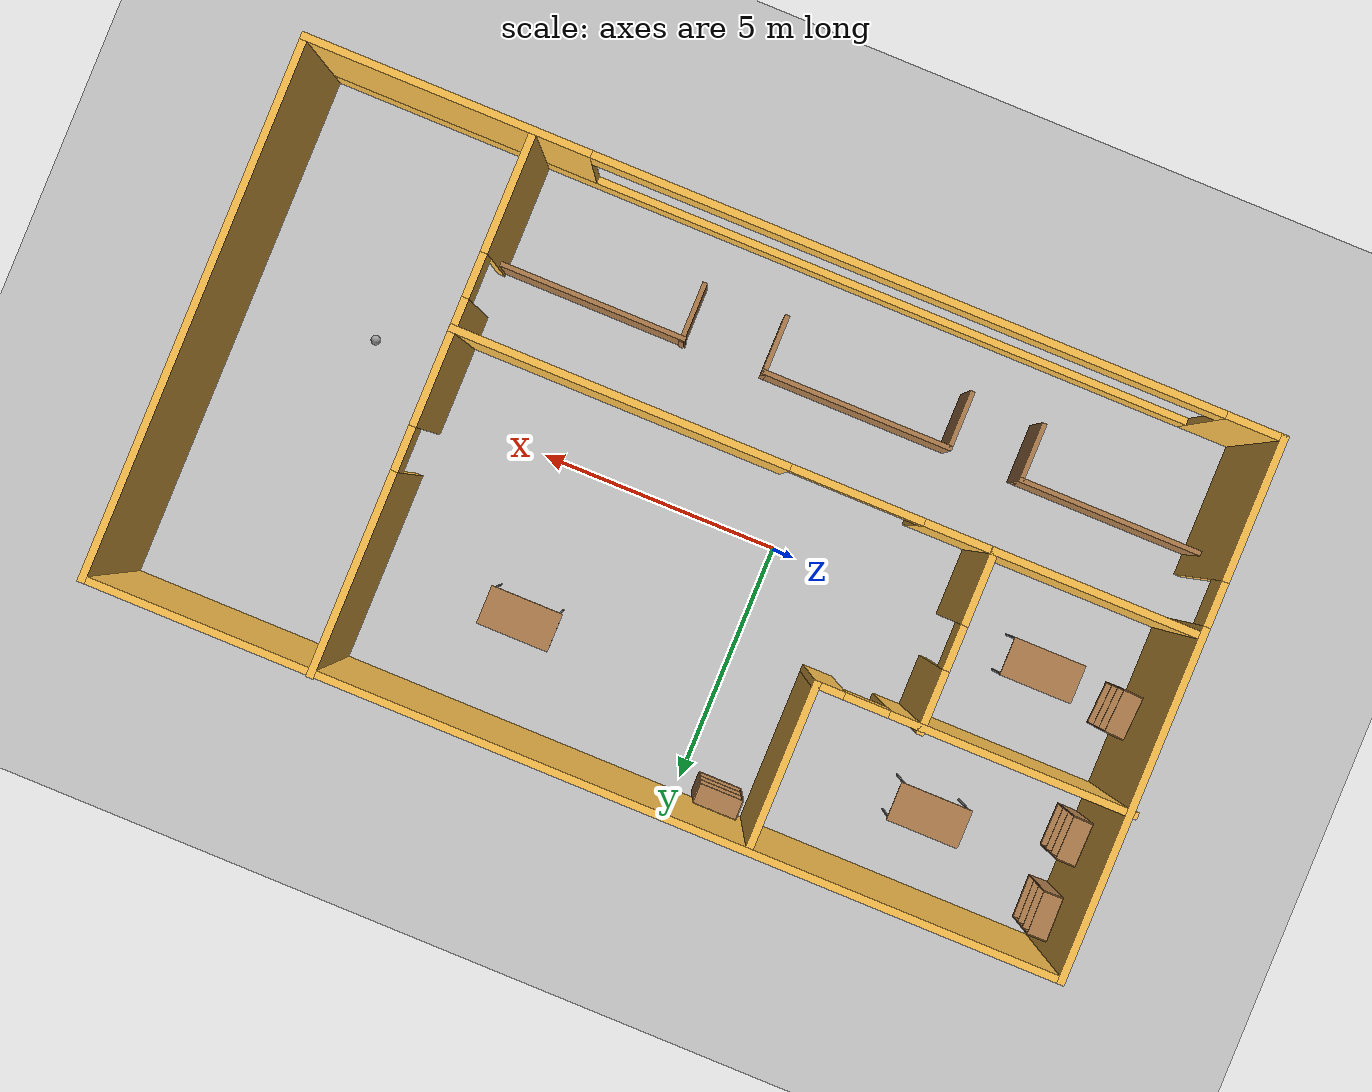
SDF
<sdf version="1.7">
 <world name="default">
  <light name="sun" type="directional">
   <pose>0 0 10 0 -0 0</pose>
   <diffuse>0.8 0.8 0.8 1</diffuse>
   <specular>0.2 0.2 0.2 1</specular>
   <attenuation>
    <range>1000</range>
    <constant>0.9</constant>
    <linear>0.01</linear>
    <quadratic>0.001</quadratic>
   </attenuation>
   <direction>-0.5 0.1 -0.9</direction>
   <spot><inner_angle>0</inner_angle><outer_angle>0</outer_angle><falloff>0</falloff></spot>
  </light>
  <model name="ground_plane">
   <static>1</static>
   <link name="link">
    <collision name="collision">
     <geometry><plane><normal>0 0 1</normal><size>100 100</size></plane></geometry>
     <surface>
      <contact><collide_bitmask>65535</collide_bitmask></contact>
      <friction><ode><mu>100</mu><mu2>50</mu2></ode></friction>
     </surface>
    </collision>
    <visual name="visual">
     <cast_shadows>0</cast_shadows>
     <geometry><plane><normal>0 0 1</normal><size>100 100</size></plane></geometry>
     <material>
      <script><uri>file://media/materials/scripts/gazebo.material</uri><name>Gazebo/Grey</name></script>
     </material>
    </visual>
   </link>
  </model>
  <gravity>0 0 -9.8</gravity>
  <magnetic_field>6e-06 2.3e-05 -4.2e-05</magnetic_field>
  <atmosphere type="adiabatic"/>
  <physics type="ode">
   <max_step_size>0.001</max_step_size>
   <real_time_factor>1</real_time_factor>
   <real_time_update_rate>1000</real_time_update_rate>
  </physics>
  <scene><ambient>0.4 0.4 0.4 1</ambient><background>0.7 0.7 0.7 1</background><shadows>1</shadows></scene>
  <spherical_coordinates>
   <surface_model>EARTH_WGS84</surface_model>
   <latitude_deg>0</latitude_deg>
   <longitude_deg>0</longitude_deg>
   <elevation>0</elevation>
   <heading_deg>0</heading_deg>
  </spherical_coordinates>
  <model name="office">
   <pose>1.96816 -0.051648 0 0 -0 0</pose>
   <link name="Wall_0">
    <pose>-9.76382 -0.012333 0 0 -0 -1.5708</pose>
    <visual name="Wall_0_Visual_0">
     <pose>-1.92357 0 1.25 0 -0 0</pose>
     <geometry><box><size>7.15286 0.15 2.5</size></box></geometry>
     <material>
      <script><uri>file://media/materials/scripts/gazebo.material</uri><name>Gazebo/Grey</name></script>
      <ambient>1 0.764706 0.305882 1</ambient>
     </material>
     <meta><layer>0</layer></meta>
    </visual>
    <collision name="Wall_0_Collision_0">
     <geometry><box><size>7.15286 0.15 2.5</size></box></geometry>
     <pose>-1.92357 0 1.25 0 -0 0</pose>
    </collision>
    <visual name="Wall_0_Visual_1">
     <pose>4.02643 0 1.25 0 -0 0</pose>
     <geometry><box><size>2.94714 0.15 2.5</size></box></geometry>
     <material>
      <script><uri>file://media/materials/scripts/gazebo.material</uri><name>Gazebo/Grey</name></script>
      <ambient>1 0.764706 0.305882 1</ambient>
     </material>
     <meta><layer>0</layer></meta>
    </visual>
    <collision name="Wall_0_Collision_1">
     <geometry><box><size>2.94714 0.15 2.5</size></box></geometry>
     <pose>4.02643 0 1.25 0 -0 0</pose>
    </collision>
    <visual name="Wall_0_Visual_2">
     <pose>2.10286 0 2.25 0 -0 0</pose>
     <geometry><box><size>0.9 0.15 0.5</size></box></geometry>
     <material>
      <script><uri>file://media/materials/scripts/gazebo.material</uri><name>Gazebo/Grey</name></script>
      <ambient>1 0.764706 0.305882 1</ambient>
     </material>
     <meta><layer>0</layer></meta>
    </visual>
    <collision name="Wall_0_Collision_2">
     <geometry><box><size>0.9 0.15 0.5</size></box></geometry>
     <pose>2.10286 0 2.25 0 -0 0</pose>
    </collision>
   </link>
   <link name="Wall_1">
    <pose>0.036176 -5.43733 0 0 -0 0</pose>
    <visual name="Wall_1_Visual_0">
     <pose>-9.26139 0 1.25 0 -0 0</pose>
     <geometry><box><size>1.22722 0.15 2.5</size></box></geometry>
     <material>
      <script><uri>file://media/materials/scripts/gazebo.material</uri><name>Gazebo/Grey</name></script>
      <ambient>1 0.764706 0.305882 1</ambient>
     </material>
     <meta><layer>0</layer></meta>
    </visual>
    <collision name="Wall_1_Collision_0">
     <geometry><box><size>1.22722 0.15 2.5</size></box></geometry>
     <pose>-9.26139 0 1.25 0 -0 0</pose>
    </collision>
    <visual name="Wall_1_Visual_1">
     <pose>0.613611 0 0.25 0 -0 0</pose>
     <geometry><box><size>18.5228 0.15 0.5</size></box></geometry>
     <material>
      <script><uri>file://media/materials/scripts/gazebo.material</uri><name>Gazebo/Grey</name></script>
      <ambient>1 0.764706 0.305882 1</ambient>
     </material>
     <meta><layer>0</layer></meta>
    </visual>
    <collision name="Wall_1_Collision_1">
     <geometry><box><size>18.5228 0.15 0.5</size></box></geometry>
     <pose>0.613611 0 0.25 0 -0 0</pose>
    </collision>
    <visual name="Wall_1_Visual_2">
     <pose>6.96961 0 1.5 0 -0 0</pose>
     <geometry><box><size>5.81078 0.15 2</size></box></geometry>
     <material>
      <script><uri>file://media/materials/scripts/gazebo.material</uri><name>Gazebo/Grey</name></script>
      <ambient>1 0.764706 0.305882 1</ambient>
     </material>
     <meta><layer>0</layer></meta>
    </visual>
    <collision name="Wall_1_Collision_2">
     <geometry><box><size>5.81078 0.15 2</size></box></geometry>
     <pose>6.96961 0 1.5 0 -0 0</pose>
    </collision>
    <visual name="Wall_1_Visual_3">
     <pose>-2.29178 0 2.25 0 -0 0</pose>
     <geometry><box><size>12.712 0.15 0.5</size></box></geometry>
     <material>
      <script><uri>file://media/materials/scripts/gazebo.material</uri><name>Gazebo/Grey</name></script>
      <ambient>1 0.764706 0.305882 1</ambient>
     </material>
     <meta><layer>0</layer></meta>
    </visual>
    <collision name="Wall_1_Collision_3">
     <geometry><box><size>12.712 0.15 0.5</size></box></geometry>
     <pose>-2.29178 0 2.25 0 -0 0</pose>
    </collision>
   </link>
   <link name="Wall_10">
    <pose>-5.60131 0.324548 0 0 -0 -1.5708</pose>
    <visual name="Wall_10_Visual_0">
     <pose>-1.23362 0 1.25 0 -0 0</pose>
     <geometry><box><size>1.28275 0.15 2.5</size></box></geometry>
     <material>
      <script><uri>file://media/materials/scripts/gazebo.material</uri><name>Gazebo/Grey</name></script>
      <ambient>1 0.764706 0.305882 1</ambient>
     </material>
     <meta><layer>0</layer></meta>
    </visual>
    <collision name="Wall_10_Collision_0">
     <geometry><box><size>1.28275 0.15 2.5</size></box></geometry>
     <pose>-1.23362 0 1.25 0 -0 0</pose>
    </collision>
    <visual name="Wall_10_Visual_1">
     <pose>1.09138 0 1.25 0 -0 0</pose>
     <geometry><box><size>1.56725 0.15 2.5</size></box></geometry>
     <material>
      <script><uri>file://media/materials/scripts/gazebo.material</uri><name>Gazebo/Grey</name></script>
      <ambient>1 0.764706 0.305882 1</ambient>
     </material>
     <meta><layer>0</layer></meta>
    </visual>
    <collision name="Wall_10_Collision_1">
     <geometry><box><size>1.56725 0.15 2.5</size></box></geometry>
     <pose>1.09138 0 1.25 0 -0 0</pose>
    </collision>
    <visual name="Wall_10_Visual_2">
     <pose>-0.142246 0 2.25 0 -0 0</pose>
     <geometry><box><size>0.9 0.15 0.5</size></box></geometry>
     <material>
      <script><uri>file://media/materials/scripts/gazebo.material</uri><name>Gazebo/Grey</name></script>
      <ambient>1 0.764706 0.305882 1</ambient>
     </material>
     <meta><layer>0</layer></meta>
    </visual>
    <collision name="Wall_10_Collision_2">
     <geometry><box><size>0.9 0.15 0.5</size></box></geometry>
     <pose>-0.142246 0 2.25 0 -0 0</pose>
    </collision>
   </link>
   <link name="Wall_11">
    <collision name="Wall_11_Collision">
     <geometry><box><size>4.25 0.15 2.5</size></box></geometry>
     <pose>0 0 1.25 0 -0 0</pose>
    </collision>
    <visual name="Wall_11_Visual">
     <pose>0 0 1.25 0 -0 0</pose>
     <geometry><box><size>4.25 0.15 2.5</size></box></geometry>
     <material>
      <script><uri>file://media/materials/scripts/gazebo.material</uri><name>Gazebo/Grey</name></script>
      <ambient>1 0.764706 0.305882 1</ambient>
     </material>
     <meta><layer>0</layer></meta>
    </visual>
    <pose>-7.65131 -1.47545 0 0 -0 3.14159</pose>
   </link>
   <link name="Wall_13">
    <pose>-0.176313 -1.47545 0 0 -0 0</pose>
    <visual name="Wall_13_Visual_0">
     <pose>-4.76061 0 1.25 0 -0 0</pose>
     <geometry><box><size>1.47879 0.15 2.5</size></box></geometry>
     <material>
      <script><uri>file://media/materials/scripts/gazebo.material</uri><name>Gazebo/Grey</name></script>
      <ambient>1 0.764706 0.305882 1</ambient>
     </material>
     <meta><layer>0</layer></meta>
    </visual>
    <collision name="Wall_13_Collision_0">
     <geometry><box><size>1.47879 0.15 2.5</size></box></geometry>
     <pose>-4.76061 0 1.25 0 -0 0</pose>
    </collision>
    <visual name="Wall_13_Visual_1">
     <pose>2.07992 0 1.25 0 -0 0</pose>
     <geometry><box><size>6.84016 0.15 2.5</size></box></geometry>
     <material>
      <script><uri>file://media/materials/scripts/gazebo.material</uri><name>Gazebo/Grey</name></script>
      <ambient>1 0.764706 0.305882 1</ambient>
     </material>
     <meta><layer>0</layer></meta>
    </visual>
    <collision name="Wall_13_Collision_1">
     <geometry><box><size>6.84016 0.15 2.5</size></box></geometry>
     <pose>2.07992 0 1.25 0 -0 0</pose>
    </collision>
    <visual name="Wall_13_Visual_2">
     <pose>-2.68068 0 2.25 0 -0 0</pose>
     <geometry><box><size>2.68106 0.15 0.5</size></box></geometry>
     <material>
      <script><uri>file://media/materials/scripts/gazebo.material</uri><name>Gazebo/Grey</name></script>
      <ambient>1 0.764706 0.305882 1</ambient>
     </material>
     <meta><layer>0</layer></meta>
    </visual>
    <collision name="Wall_13_Collision_2">
     <geometry><box><size>2.68106 0.15 0.5</size></box></geometry>
     <pose>-2.68068 0 2.25 0 -0 0</pose>
    </collision>
   </link>
   <link name="Wall_14">
    <pose>5.24869 -3.40045 0 0 -0 -1.5708</pose>
    <visual name="Wall_14_Visual_0">
     <pose>-1.65386 0 1.25 0 -0 0</pose>
     <geometry><box><size>0.692275 0.15 2.5</size></box></geometry>
     <material>
      <script><uri>file://media/materials/scripts/gazebo.material</uri><name>Gazebo/Grey</name></script>
      <ambient>1 0.764706 0.305882 1</ambient>
     </material>
     <meta><layer>0</layer></meta>
    </visual>
    <collision name="Wall_14_Collision_0">
     <geometry><box><size>0.692275 0.15 2.5</size></box></geometry>
     <pose>-1.65386 0 1.25 0 -0 0</pose>
    </collision>
    <visual name="Wall_14_Visual_1">
     <pose>0.796137 0 1.25 0 -0 0</pose>
     <geometry><box><size>2.40773 0.15 2.5</size></box></geometry>
     <material>
      <script><uri>file://media/materials/scripts/gazebo.material</uri><name>Gazebo/Grey</name></script>
      <ambient>1 0.764706 0.305882 1</ambient>
     </material>
     <meta><layer>0</layer></meta>
    </visual>
    <collision name="Wall_14_Collision_1">
     <geometry><box><size>2.40773 0.15 2.5</size></box></geometry>
     <pose>0.796137 0 1.25 0 -0 0</pose>
    </collision>
    <visual name="Wall_14_Visual_2">
     <pose>-0.857725 0 2.25 0 -0 0</pose>
     <geometry><box><size>0.9 0.15 0.5</size></box></geometry>
     <material>
      <script><uri>file://media/materials/scripts/gazebo.material</uri><name>Gazebo/Grey</name></script>
      <ambient>1 0.764706 0.305882 1</ambient>
     </material>
     <meta><layer>0</layer></meta>
    </visual>
    <collision name="Wall_14_Collision_2">
     <geometry><box><size>0.9 0.15 0.5</size></box></geometry>
     <pose>-0.857725 0 2.25 0 -0 0</pose>
    </collision>
   </link>
   <link name="Wall_17">
    <pose>5.25028 2.01233 0 0 -0 -1.5708</pose>
    <visual name="Wall_17_Visual_0">
     <pose>-1.43227 0 1.25 0 -0 0</pose>
     <geometry><box><size>4.13547 0.15 2.5</size></box></geometry>
     <material>
      <script><uri>file://media/materials/scripts/gazebo.material</uri><name>Gazebo/Grey</name></script>
      <ambient>1 0.764706 0.305882 1</ambient>
     </material>
     <meta><layer>0</layer></meta>
    </visual>
    <collision name="Wall_17_Collision_0">
     <geometry><box><size>4.13547 0.15 2.5</size></box></geometry>
     <pose>-1.43227 0 1.25 0 -0 0</pose>
    </collision>
    <visual name="Wall_17_Visual_1">
     <pose>2.51773 0 1.25 0 -0 0</pose>
     <geometry><box><size>1.96453 0.15 2.5</size></box></geometry>
     <material>
      <script><uri>file://media/materials/scripts/gazebo.material</uri><name>Gazebo/Grey</name></script>
      <ambient>1 0.764706 0.305882 1</ambient>
     </material>
     <meta><layer>0</layer></meta>
    </visual>
    <collision name="Wall_17_Collision_1">
     <geometry><box><size>1.96453 0.15 2.5</size></box></geometry>
     <pose>2.51773 0 1.25 0 -0 0</pose>
    </collision>
    <visual name="Wall_17_Visual_2">
     <pose>1.08547 0 2.25 0 -0 0</pose>
     <geometry><box><size>0.9 0.15 0.5</size></box></geometry>
     <material>
      <script><uri>file://media/materials/scripts/gazebo.material</uri><name>Gazebo/Grey</name></script>
      <ambient>1 0.764706 0.305882 1</ambient>
     </material>
     <meta><layer>0</layer></meta>
    </visual>
    <collision name="Wall_17_Collision_2">
     <geometry><box><size>0.9 0.15 0.5</size></box></geometry>
     <pose>1.08547 0 2.25 0 -0 0</pose>
    </collision>
   </link>
   <link name="Wall_2">
    <collision name="Wall_2_Collision">
     <geometry><box><size>11 0.15 2.5</size></box></geometry>
     <pose>0 0 1.25 0 -0 0</pose>
    </collision>
    <visual name="Wall_2_Visual">
     <pose>0 0 1.25 0 -0 0</pose>
     <geometry><box><size>11 0.15 2.5</size></box></geometry>
     <material>
      <script><uri>file://media/materials/scripts/gazebo.material</uri><name>Gazebo/Grey</name></script>
      <ambient>1 0.764706 0.305882 1</ambient>
     </material>
     <meta><layer>0</layer></meta>
    </visual>
    <pose>9.83618 -0.012333 0 0 -0 1.5708</pose>
   </link>
   <link name="Wall_20">
    <collision name="Wall_20_Collision">
     <geometry><box><size>4 0.1 1</size></box></geometry>
     <pose>0 0 0.5 0 -0 0</pose>
    </collision>
    <visual name="Wall_20_Visual">
     <pose>0 0 0.5 0 -0 0</pose>
     <geometry><box><size>4 0.1 1</size></box></geometry>
     <material>
      <script><uri>file://media/materials/scripts/gazebo.material</uri><name>Gazebo/Wood</name></script>
      <ambient>1 1 1 1</ambient>
     </material>
     <meta><layer>0</layer></meta>
    </visual>
    <pose>-7.83601 -3.05118 0 0 -0 0</pose>
   </link>
   <link name="Wall_21">
    <collision name="Wall_21_Collision">
     <geometry><box><size>1.25 0.1 1</size></box></geometry>
     <pose>0 0 0.5 0 -0 0</pose>
    </collision>
    <visual name="Wall_21_Visual">
     <pose>0 0 0.5 0 -0 0</pose>
     <geometry><box><size>1.25 0.1 1</size></box></geometry>
     <material>
      <script><uri>file://media/materials/scripts/gazebo.material</uri><name>Gazebo/Wood</name></script>
      <ambient>1 1 1 1</ambient>
     </material>
     <meta><layer>0</layer></meta>
    </visual>
    <pose>-5.88601 -3.62618 0 0 -0 -1.5708</pose>
   </link>
   <link name="Wall_26">
    <collision name="Wall_26_Collision">
     <geometry><box><size>4.02313 0.1 1</size></box></geometry>
     <pose>0 0 0.5 0 -0 0</pose>
    </collision>
    <visual name="Wall_26_Visual">
     <pose>0 0 0.5 0 -0 0</pose>
     <geometry><box><size>4.02313 0.1 1</size></box></geometry>
     <material>
      <script><uri>file://media/materials/scripts/gazebo.material</uri><name>Gazebo/Wood</name></script>
      <ambient>1 1 1 1</ambient>
     </material>
     <meta><layer>0</layer></meta>
    </visual>
    <pose>-2.38332 -3.09744 0 0 -0 0</pose>
   </link>
   <link name="Wall_29">
    <collision name="Wall_29_Collision">
     <geometry><box><size>1.25 0.1 1</size></box></geometry>
     <pose>0 0 0.5 0 -0 0</pose>
    </collision>
    <visual name="Wall_29_Visual">
     <pose>0 0 0.5 0 -0 0</pose>
     <geometry><box><size>1.25 0.1 1</size></box></geometry>
     <material>
      <script><uri>file://media/materials/scripts/gazebo.material</uri><name>Gazebo/Wood</name></script>
      <ambient>1 1 1 1</ambient>
     </material>
     <meta><layer>0</layer></meta>
    </visual>
    <pose>-0.42175 -3.67244 0 0 -0 -1.5708</pose>
   </link>
   <link name="Wall_3">
    <collision name="Wall_3_Collision">
     <geometry><box><size>19.75 0.15 2.5</size></box></geometry>
     <pose>0 0 1.25 0 -0 0</pose>
    </collision>
    <visual name="Wall_3_Visual">
     <pose>0 0 1.25 0 -0 0</pose>
     <geometry><box><size>19.75 0.15 2.5</size></box></geometry>
     <material>
      <script><uri>file://media/materials/scripts/gazebo.material</uri><name>Gazebo/Grey</name></script>
      <ambient>1 0.764706 0.305882 1</ambient>
     </material>
     <meta><layer>0</layer></meta>
    </visual>
    <pose>0.036176 5.41267 0 0 -0 3.14159</pose>
   </link>
   <link name="Wall_31">
    <collision name="Wall_31_Collision">
     <geometry><box><size>1.25 0.1 1</size></box></geometry>
     <pose>0 0 0.5 0 -0 0</pose>
    </collision>
    <visual name="Wall_31_Visual">
     <pose>0 0 0.5 0 -0 0</pose>
     <geometry><box><size>1.25 0.1 1</size></box></geometry>
     <material>
      <script><uri>file://media/materials/scripts/gazebo.material</uri><name>Gazebo/Wood</name></script>
      <ambient>1 1 1 1</ambient>
     </material>
     <meta><layer>0</layer></meta>
    </visual>
    <pose>-4.34488 -3.67244 0 0 -0 -1.5708</pose>
   </link>
   <link name="Wall_33">
    <collision name="Wall_33_Collision">
     <geometry><box><size>4 0.1 1</size></box></geometry>
     <pose>0 0 0.5 0 -0 0</pose>
    </collision>
    <visual name="Wall_33_Visual">
     <pose>0 0 0.5 0 -0 0</pose>
     <geometry><box><size>4 0.1 1</size></box></geometry>
     <material>
      <script><uri>file://media/materials/scripts/gazebo.material</uri><name>Gazebo/Wood</name></script>
      <ambient>1 1 1 1</ambient>
     </material>
     <meta><layer>0</layer></meta>
    </visual>
    <pose>3.24539 -3.09797 0 0 -0 4.2e-05</pose>
   </link>
   <link name="Wall_36">
    <collision name="Wall_36_Collision">
     <geometry><box><size>1.25 0.1 1</size></box></geometry>
     <pose>0 0 0.5 0 -0 0</pose>
    </collision>
    <visual name="Wall_36_Visual">
     <pose>0 0 0.5 0 -0 0</pose>
     <geometry><box><size>1.25 0.1 1</size></box></geometry>
     <material>
      <script><uri>file://media/materials/scripts/gazebo.material</uri><name>Gazebo/Wood</name></script>
      <ambient>1 1 1 1</ambient>
     </material>
     <meta><layer>0</layer></meta>
    </visual>
    <pose>1.31852 -3.64992 0 0 -0 -1.5708</pose>
   </link>
   <link name="Wall_5">
    <collision name="Wall_5_Collision">
     <geometry><box><size>3.5 0.15 2.5</size></box></geometry>
     <pose>0 0 1.25 0 -0 0</pose>
    </collision>
    <visual name="Wall_5_Visual">
     <pose>0 0 1.25 0 -0 0</pose>
     <geometry><box><size>3.5 0.15 2.5</size></box></geometry>
     <material>
      <script><uri>file://media/materials/scripts/gazebo.material</uri><name>Gazebo/Grey</name></script>
      <ambient>1 0.764706 0.305882 1</ambient>
     </material>
     <meta><layer>0</layer></meta>
    </visual>
    <pose>-3.48618 3.73767 0 0 -0 -1.5708</pose>
   </link>
   <link name="Wall_6">
    <pose>-6.66118 2.06267 0 0 -0 3.14159</pose>
    <visual name="Wall_6_Visual_0">
     <pose>-2.93505 0 1.25 0 -0 0</pose>
     <geometry><box><size>0.629897 0.15 2.5</size></box></geometry>
     <material>
      <script><uri>file://media/materials/scripts/gazebo.material</uri><name>Gazebo/Grey</name></script>
      <ambient>1 0.764706 0.305882 1</ambient>
     </material>
     <meta><layer>0</layer></meta>
    </visual>
    <collision name="Wall_6_Collision_0">
     <geometry><box><size>0.629897 0.15 2.5</size></box></geometry>
     <pose>-2.93505 0 1.25 0 -0 0</pose>
    </collision>
    <visual name="Wall_6_Visual_1">
     <pose>0.764949 0 1.25 0 -0 0</pose>
     <geometry><box><size>4.9701 0.15 2.5</size></box></geometry>
     <material>
      <script><uri>file://media/materials/scripts/gazebo.material</uri><name>Gazebo/Grey</name></script>
      <ambient>1 0.764706 0.305882 1</ambient>
     </material>
     <meta><layer>0</layer></meta>
    </visual>
    <collision name="Wall_6_Collision_1">
     <geometry><box><size>4.9701 0.15 2.5</size></box></geometry>
     <pose>0.764949 0 1.25 0 -0 0</pose>
    </collision>
    <visual name="Wall_6_Visual_2">
     <pose>-2.1701 0 2.25 0 -0 0</pose>
     <geometry><box><size>0.9 0.15 0.5</size></box></geometry>
     <material>
      <script><uri>file://media/materials/scripts/gazebo.material</uri><name>Gazebo/Grey</name></script>
      <ambient>1 0.764706 0.305882 1</ambient>
     </material>
     <meta><layer>0</layer></meta>
    </visual>
    <collision name="Wall_6_Collision_2">
     <geometry><box><size>0.9 0.15 0.5</size></box></geometry>
     <pose>-2.1701 0 2.25 0 -0 0</pose>
    </collision>
   </link>
   <static>1</static>
  </model>
  <model name="table_1">
   <static>1</static>
   <link name="link">
    <collision name="surface">
     <pose>0 0 1 0 -0 0</pose>
     <geometry><box><size>1.5 0.8 0.03</size></box></geometry>
     <surface><friction><ode><mu>0.6</mu><mu2>0.6</mu2></ode></friction></surface>
    </collision>
    <visual name="visual1">
     <pose>0 0 1 0 -0 0</pose>
     <geometry><box><size>1.5 0.8 0.03</size></box></geometry>
     <material>
      <script><uri>file://media/materials/scripts/gazebo.material</uri><name>Gazebo/Wood</name></script>
     </material>
    </visual>
    <collision name="front_left_leg">
     <pose>0.68 0.38 0.5 0 -0 0</pose>
     <geometry><cylinder><radius>0.02</radius><length>1</length></cylinder></geometry>
    </collision>
    <visual name="front_left_leg">
     <pose>0.68 0.38 0.5 0 -0 0</pose>
     <geometry><cylinder><radius>0.02</radius><length>1</length></cylinder></geometry>
     <material>
      <script><uri>file://media/materials/scripts/gazebo.material</uri><name>Gazebo/Grey</name></script>
     </material>
    </visual>
    <collision name="front_right_leg">
     <pose>0.68 -0.38 0.5 0 -0 0</pose>
     <geometry><cylinder><radius>0.02</radius><length>1</length></cylinder></geometry>
    </collision>
    <visual name="front_right_leg">
     <pose>0.68 -0.38 0.5 0 -0 0</pose>
     <geometry><cylinder><radius>0.02</radius><length>1</length></cylinder></geometry>
     <material>
      <script><uri>file://media/materials/scripts/gazebo.material</uri><name>Gazebo/Grey</name></script>
     </material>
    </visual>
    <collision name="back_right_leg">
     <pose>-0.68 -0.38 0.5 0 -0 0</pose>
     <geometry><cylinder><radius>0.02</radius><length>1</length></cylinder></geometry>
    </collision>
    <visual name="back_right_leg">
     <pose>-0.68 -0.38 0.5 0 -0 0</pose>
     <geometry><cylinder><radius>0.02</radius><length>1</length></cylinder></geometry>
     <material>
      <script><uri>file://media/materials/scripts/gazebo.material</uri><name>Gazebo/Grey</name></script>
     </material>
    </visual>
    <collision name="back_left_leg">
     <pose>-0.68 0.38 0.5 0 -0 0</pose>
     <geometry><cylinder><radius>0.02</radius><length>1</length></cylinder></geometry>
    </collision>
    <visual name="back_left_leg">
     <pose>-0.68 0.38 0.5 0 -0 0</pose>
     <geometry><cylinder><radius>0.02</radius><length>1</length></cylinder></geometry>
     <material>
      <script><uri>file://media/materials/scripts/gazebo.material</uri><name>Gazebo/Grey</name></script>
     </material>
    </visual>
   </link>
   <pose>4.15065 3.1469 0 0 -0 0</pose>
  </model>
  <model name="table_2">
   <static>1</static>
   <link name="link">
    <collision name="surface">
     <pose>0 0 1 0 -0 0</pose>
     <geometry><box><size>1.5 0.8 0.03</size></box></geometry>
     <surface><friction><ode><mu>0.6</mu><mu2>0.6</mu2></ode></friction></surface>
    </collision>
    <visual name="visual1">
     <pose>0 0 1 0 -0 0</pose>
     <geometry><box><size>1.5 0.8 0.03</size></box></geometry>
     <material>
      <script><uri>file://media/materials/scripts/gazebo.material</uri><name>Gazebo/Wood</name></script>
     </material>
    </visual>
    <collision name="front_left_leg">
     <pose>0.68 0.38 0.5 0 -0 0</pose>
     <geometry><cylinder><radius>0.02</radius><length>1</length></cylinder></geometry>
    </collision>
    <visual name="front_left_leg">
     <pose>0.68 0.38 0.5 0 -0 0</pose>
     <geometry><cylinder><radius>0.02</radius><length>1</length></cylinder></geometry>
     <material>
      <script><uri>file://media/materials/scripts/gazebo.material</uri><name>Gazebo/Grey</name></script>
     </material>
    </visual>
    <collision name="front_right_leg">
     <pose>0.68 -0.38 0.5 0 -0 0</pose>
     <geometry><cylinder><radius>0.02</radius><length>1</length></cylinder></geometry>
    </collision>
    <visual name="front_right_leg">
     <pose>0.68 -0.38 0.5 0 -0 0</pose>
     <geometry><cylinder><radius>0.02</radius><length>1</length></cylinder></geometry>
     <material>
      <script><uri>file://media/materials/scripts/gazebo.material</uri><name>Gazebo/Grey</name></script>
     </material>
    </visual>
    <collision name="back_right_leg">
     <pose>-0.68 -0.38 0.5 0 -0 0</pose>
     <geometry><cylinder><radius>0.02</radius><length>1</length></cylinder></geometry>
    </collision>
    <visual name="back_right_leg">
     <pose>-0.68 -0.38 0.5 0 -0 0</pose>
     <geometry><cylinder><radius>0.02</radius><length>1</length></cylinder></geometry>
     <material>
      <script><uri>file://media/materials/scripts/gazebo.material</uri><name>Gazebo/Grey</name></script>
     </material>
    </visual>
    <collision name="back_left_leg">
     <pose>-0.68 0.38 0.5 0 -0 0</pose>
     <geometry><cylinder><radius>0.02</radius><length>1</length></cylinder></geometry>
    </collision>
    <visual name="back_left_leg">
     <pose>-0.68 0.38 0.5 0 -0 0</pose>
     <geometry><cylinder><radius>0.02</radius><length>1</length></cylinder></geometry>
     <material>
      <script><uri>file://media/materials/scripts/gazebo.material</uri><name>Gazebo/Grey</name></script>
     </material>
    </visual>
   </link>
   <pose>-4.74233 3.66061 0 0 -0 0</pose>
  </model>
  <model name="table_3">
   <static>1</static>
   <link name="link">
    <collision name="surface">
     <pose>0 0 1 0 -0 0</pose>
     <geometry><box><size>1.5 0.8 0.03</size></box></geometry>
     <surface><friction><ode><mu>0.6</mu><mu2>0.6</mu2></ode></friction></surface>
    </collision>
    <visual name="visual1">
     <pose>0 0 1 0 -0 0</pose>
     <geometry><box><size>1.5 0.8 0.03</size></box></geometry>
     <material>
      <script><uri>file://media/materials/scripts/gazebo.material</uri><name>Gazebo/Wood</name></script>
     </material>
    </visual>
    <collision name="front_left_leg">
     <pose>0.68 0.38 0.5 0 -0 0</pose>
     <geometry><cylinder><radius>0.02</radius><length>1</length></cylinder></geometry>
    </collision>
    <visual name="front_left_leg">
     <pose>0.68 0.38 0.5 0 -0 0</pose>
     <geometry><cylinder><radius>0.02</radius><length>1</length></cylinder></geometry>
     <material>
      <script><uri>file://media/materials/scripts/gazebo.material</uri><name>Gazebo/Grey</name></script>
     </material>
    </visual>
    <collision name="front_right_leg">
     <pose>0.68 -0.38 0.5 0 -0 0</pose>
     <geometry><cylinder><radius>0.02</radius><length>1</length></cylinder></geometry>
    </collision>
    <visual name="front_right_leg">
     <pose>0.68 -0.38 0.5 0 -0 0</pose>
     <geometry><cylinder><radius>0.02</radius><length>1</length></cylinder></geometry>
     <material>
      <script><uri>file://media/materials/scripts/gazebo.material</uri><name>Gazebo/Grey</name></script>
     </material>
    </visual>
    <collision name="back_right_leg">
     <pose>-0.68 -0.38 0.5 0 -0 0</pose>
     <geometry><cylinder><radius>0.02</radius><length>1</length></cylinder></geometry>
    </collision>
    <visual name="back_right_leg">
     <pose>-0.68 -0.38 0.5 0 -0 0</pose>
     <geometry><cylinder><radius>0.02</radius><length>1</length></cylinder></geometry>
     <material>
      <script><uri>file://media/materials/scripts/gazebo.material</uri><name>Gazebo/Grey</name></script>
     </material>
    </visual>
    <collision name="back_left_leg">
     <pose>-0.68 0.38 0.5 0 -0 0</pose>
     <geometry><cylinder><radius>0.02</radius><length>1</length></cylinder></geometry>
    </collision>
    <visual name="back_left_leg">
     <pose>-0.68 0.38 0.5 0 -0 0</pose>
     <geometry><cylinder><radius>0.02</radius><length>1</length></cylinder></geometry>
     <material>
      <script><uri>file://media/materials/scripts/gazebo.material</uri><name>Gazebo/Grey</name></script>
     </material>
    </visual>
   </link>
   <pose>-5.71788 0.191235 0 0 -0 0</pose>
  </model>
  <model name="bookshelf">
   <static>1</static>
   <link name="link">
    <inertial><mass>1</mass></inertial>
    <collision name="back">
     <pose>0 0.005 0.6 0 -0 0</pose>
     <geometry><box><size>0.9 0.01 1.2</size></box></geometry>
    </collision>
    <visual name="visual1">
     <pose>0 0.005 0.6 0 -0 0</pose>
     <geometry><box><size>0.9 0.01 1.2</size></box></geometry>
     <material>
      <script><uri>file://media/materials/scripts/gazebo.material</uri><name>Gazebo/Wood</name></script>
     </material>
    </visual>
    <collision name="left_side">
     <pose>0.45 -0.195 0.6 0 -0 0</pose>
     <geometry><box><size>0.02 0.4 1.2</size></box></geometry>
    </collision>
    <visual name="visual2">
     <pose>0.45 -0.195 0.6 0 -0 0</pose>
     <geometry><box><size>0.02 0.4 1.2</size></box></geometry>
     <material>
      <script><uri>file://media/materials/scripts/gazebo.material</uri><name>Gazebo/Wood</name></script>
     </material>
    </visual>
    <collision name="right_side">
     <pose>-0.45 -0.195 0.6 0 -0 0</pose>
     <geometry><box><size>0.02 0.4 1.2</size></box></geometry>
    </collision>
    <visual name="visual3">
     <pose>-0.45 -0.195 0.6 0 -0 0</pose>
     <geometry><box><size>0.02 0.4 1.2</size></box></geometry>
     <material>
      <script><uri>file://media/materials/scripts/gazebo.material</uri><name>Gazebo/Wood</name></script>
     </material>
    </visual>
    <collision name="bottom">
     <pose>0 -0.195 0.03 0 -0 0</pose>
     <geometry><box><size>0.88 0.4 0.06</size></box></geometry>
    </collision>
    <visual name="visual4">
     <pose>0 -0.195 0.03 0 -0 0</pose>
     <geometry><box><size>0.88 0.4 0.06</size></box></geometry>
     <material>
      <script><uri>file://media/materials/scripts/gazebo.material</uri><name>Gazebo/Wood</name></script>
     </material>
    </visual>
    <collision name="top">
     <pose>0 -0.195 1.19 0 -0 0</pose>
     <geometry><box><size>0.88 0.4 0.02</size></box></geometry>
    </collision>
    <visual name="visual5">
     <pose>0 -0.195 1.19 0 -0 0</pose>
     <geometry><box><size>0.88 0.4 0.02</size></box></geometry>
     <material>
      <script><uri>file://media/materials/scripts/gazebo.material</uri><name>Gazebo/Wood</name></script>
     </material>
    </visual>
    <collision name="low_shelf">
     <pose>0 -0.195 0.43 0 -0 0</pose>
     <geometry><box><size>0.88 0.4 0.02</size></box></geometry>
    </collision>
    <visual name="visual6">
     <pose>0 -0.195 0.43 0 -0 0</pose>
     <geometry><box><size>0.88 0.4 0.02</size></box></geometry>
     <material>
      <script><uri>file://media/materials/scripts/gazebo.material</uri><name>Gazebo/Wood</name></script>
     </material>
    </visual>
    <collision name="high_shelf">
     <pose>0 -0.195 0.8 0 -0 0</pose>
     <geometry><box><size>0.88 0.4 0.02</size></box></geometry>
    </collision>
    <visual name="visual7">
     <pose>0 -0.195 0.8 0 -0 0</pose>
     <geometry><box><size>0.88 0.4 0.02</size></box></geometry>
     <material>
      <script><uri>file://media/materials/scripts/gazebo.material</uri><name>Gazebo/Wood</name></script>
     </material>
    </visual>
   </link>
   <pose>-0.769299 5.11699 0.146163 0 -0 0</pose>
  </model>
  <model name="bookshelf_0">
   <static>1</static>
   <link name="link">
    <inertial><mass>1</mass></inertial>
    <collision name="back">
     <pose>0 0.005 0.6 0 -0 0</pose>
     <geometry><box><size>0.9 0.01 1.2</size></box></geometry>
    </collision>
    <visual name="visual1">
     <pose>0 0.005 0.6 0 -0 0</pose>
     <geometry><box><size>0.9 0.01 1.2</size></box></geometry>
     <material>
      <script><uri>file://media/materials/scripts/gazebo.material</uri><name>Gazebo/Wood</name></script>
     </material>
    </visual>
    <collision name="left_side">
     <pose>0.45 -0.195 0.6 0 -0 0</pose>
     <geometry><box><size>0.02 0.4 1.2</size></box></geometry>
    </collision>
    <visual name="visual2">
     <pose>0.45 -0.195 0.6 0 -0 0</pose>
     <geometry><box><size>0.02 0.4 1.2</size></box></geometry>
     <material>
      <script><uri>file://media/materials/scripts/gazebo.material</uri><name>Gazebo/Wood</name></script>
     </material>
    </visual>
    <collision name="right_side">
     <pose>-0.45 -0.195 0.6 0 -0 0</pose>
     <geometry><box><size>0.02 0.4 1.2</size></box></geometry>
    </collision>
    <visual name="visual3">
     <pose>-0.45 -0.195 0.6 0 -0 0</pose>
     <geometry><box><size>0.02 0.4 1.2</size></box></geometry>
     <material>
      <script><uri>file://media/materials/scripts/gazebo.material</uri><name>Gazebo/Wood</name></script>
     </material>
    </visual>
    <collision name="bottom">
     <pose>0 -0.195 0.03 0 -0 0</pose>
     <geometry><box><size>0.88 0.4 0.06</size></box></geometry>
    </collision>
    <visual name="visual4">
     <pose>0 -0.195 0.03 0 -0 0</pose>
     <geometry><box><size>0.88 0.4 0.06</size></box></geometry>
     <material>
      <script><uri>file://media/materials/scripts/gazebo.material</uri><name>Gazebo/Wood</name></script>
     </material>
    </visual>
    <collision name="top">
     <pose>0 -0.195 1.19 0 -0 0</pose>
     <geometry><box><size>0.88 0.4 0.02</size></box></geometry>
    </collision>
    <visual name="visual5">
     <pose>0 -0.195 1.19 0 -0 0</pose>
     <geometry><box><size>0.88 0.4 0.02</size></box></geometry>
     <material>
      <script><uri>file://media/materials/scripts/gazebo.material</uri><name>Gazebo/Wood</name></script>
     </material>
    </visual>
    <collision name="low_shelf">
     <pose>0 -0.195 0.43 0 -0 0</pose>
     <geometry><box><size>0.88 0.4 0.02</size></box></geometry>
    </collision>
    <visual name="visual6">
     <pose>0 -0.195 0.43 0 -0 0</pose>
     <geometry><box><size>0.88 0.4 0.02</size></box></geometry>
     <material>
      <script><uri>file://media/materials/scripts/gazebo.material</uri><name>Gazebo/Wood</name></script>
     </material>
    </visual>
    <collision name="high_shelf">
     <pose>0 -0.195 0.8 0 -0 0</pose>
     <geometry><box><size>0.88 0.4 0.02</size></box></geometry>
    </collision>
    <visual name="visual7">
     <pose>0 -0.195 0.8 0 -0 0</pose>
     <geometry><box><size>0.88 0.4 0.02</size></box></geometry>
     <material>
      <script><uri>file://media/materials/scripts/gazebo.material</uri><name>Gazebo/Wood</name></script>
     </material>
    </visual>
   </link>
   <pose>-7.69628 4.58203 0.055196 0 -0 1.58722</pose>
  </model>
  <model name="bookshelf_1">
   <static>1</static>
   <link name="link">
    <inertial><mass>1</mass></inertial>
    <collision name="back">
     <pose>0 0.005 0.6 0 -0 0</pose>
     <geometry><box><size>0.9 0.01 1.2</size></box></geometry>
    </collision>
    <visual name="visual1">
     <pose>0 0.005 0.6 0 -0 0</pose>
     <geometry><box><size>0.9 0.01 1.2</size></box></geometry>
     <material>
      <script><uri>file://media/materials/scripts/gazebo.material</uri><name>Gazebo/Wood</name></script>
     </material>
    </visual>
    <collision name="left_side">
     <pose>0.45 -0.195 0.6 0 -0 0</pose>
     <geometry><box><size>0.02 0.4 1.2</size></box></geometry>
    </collision>
    <visual name="visual2">
     <pose>0.45 -0.195 0.6 0 -0 0</pose>
     <geometry><box><size>0.02 0.4 1.2</size></box></geometry>
     <material>
      <script><uri>file://media/materials/scripts/gazebo.material</uri><name>Gazebo/Wood</name></script>
     </material>
    </visual>
    <collision name="right_side">
     <pose>-0.45 -0.195 0.6 0 -0 0</pose>
     <geometry><box><size>0.02 0.4 1.2</size></box></geometry>
    </collision>
    <visual name="visual3">
     <pose>-0.45 -0.195 0.6 0 -0 0</pose>
     <geometry><box><size>0.02 0.4 1.2</size></box></geometry>
     <material>
      <script><uri>file://media/materials/scripts/gazebo.material</uri><name>Gazebo/Wood</name></script>
     </material>
    </visual>
    <collision name="bottom">
     <pose>0 -0.195 0.03 0 -0 0</pose>
     <geometry><box><size>0.88 0.4 0.06</size></box></geometry>
    </collision>
    <visual name="visual4">
     <pose>0 -0.195 0.03 0 -0 0</pose>
     <geometry><box><size>0.88 0.4 0.06</size></box></geometry>
     <material>
      <script><uri>file://media/materials/scripts/gazebo.material</uri><name>Gazebo/Wood</name></script>
     </material>
    </visual>
    <collision name="top">
     <pose>0 -0.195 1.19 0 -0 0</pose>
     <geometry><box><size>0.88 0.4 0.02</size></box></geometry>
    </collision>
    <visual name="visual5">
     <pose>0 -0.195 1.19 0 -0 0</pose>
     <geometry><box><size>0.88 0.4 0.02</size></box></geometry>
     <material>
      <script><uri>file://media/materials/scripts/gazebo.material</uri><name>Gazebo/Wood</name></script>
     </material>
    </visual>
    <collision name="low_shelf">
     <pose>0 -0.195 0.43 0 -0 0</pose>
     <geometry><box><size>0.88 0.4 0.02</size></box></geometry>
    </collision>
    <visual name="visual6">
     <pose>0 -0.195 0.43 0 -0 0</pose>
     <geometry><box><size>0.88 0.4 0.02</size></box></geometry>
     <material>
      <script><uri>file://media/materials/scripts/gazebo.material</uri><name>Gazebo/Wood</name></script>
     </material>
    </visual>
    <collision name="high_shelf">
     <pose>0 -0.195 0.8 0 -0 0</pose>
     <geometry><box><size>0.88 0.4 0.02</size></box></geometry>
    </collision>
    <visual name="visual7">
     <pose>0 -0.195 0.8 0 -0 0</pose>
     <geometry><box><size>0.88 0.4 0.02</size></box></geometry>
     <material>
      <script><uri>file://media/materials/scripts/gazebo.material</uri><name>Gazebo/Wood</name></script>
     </material>
    </visual>
   </link>
   <pose>-7.67391 3.03031 0.049959 0 -0 1.55456</pose>
  </model>
  <model name="bookshelf_2">
   <static>1</static>
   <link name="link">
    <inertial><mass>1</mass></inertial>
    <collision name="back">
     <pose>0 0.005 0.6 0 -0 0</pose>
     <geometry><box><size>0.9 0.01 1.2</size></box></geometry>
    </collision>
    <visual name="visual1">
     <pose>0 0.005 0.6 0 -0 0</pose>
     <geometry><box><size>0.9 0.01 1.2</size></box></geometry>
     <material>
      <script><uri>file://media/materials/scripts/gazebo.material</uri><name>Gazebo/Wood</name></script>
     </material>
    </visual>
    <collision name="left_side">
     <pose>0.45 -0.195 0.6 0 -0 0</pose>
     <geometry><box><size>0.02 0.4 1.2</size></box></geometry>
    </collision>
    <visual name="visual2">
     <pose>0.45 -0.195 0.6 0 -0 0</pose>
     <geometry><box><size>0.02 0.4 1.2</size></box></geometry>
     <material>
      <script><uri>file://media/materials/scripts/gazebo.material</uri><name>Gazebo/Wood</name></script>
     </material>
    </visual>
    <collision name="right_side">
     <pose>-0.45 -0.195 0.6 0 -0 0</pose>
     <geometry><box><size>0.02 0.4 1.2</size></box></geometry>
    </collision>
    <visual name="visual3">
     <pose>-0.45 -0.195 0.6 0 -0 0</pose>
     <geometry><box><size>0.02 0.4 1.2</size></box></geometry>
     <material>
      <script><uri>file://media/materials/scripts/gazebo.material</uri><name>Gazebo/Wood</name></script>
     </material>
    </visual>
    <collision name="bottom">
     <pose>0 -0.195 0.03 0 -0 0</pose>
     <geometry><box><size>0.88 0.4 0.06</size></box></geometry>
    </collision>
    <visual name="visual4">
     <pose>0 -0.195 0.03 0 -0 0</pose>
     <geometry><box><size>0.88 0.4 0.06</size></box></geometry>
     <material>
      <script><uri>file://media/materials/scripts/gazebo.material</uri><name>Gazebo/Wood</name></script>
     </material>
    </visual>
    <collision name="top">
     <pose>0 -0.195 1.19 0 -0 0</pose>
     <geometry><box><size>0.88 0.4 0.02</size></box></geometry>
    </collision>
    <visual name="visual5">
     <pose>0 -0.195 1.19 0 -0 0</pose>
     <geometry><box><size>0.88 0.4 0.02</size></box></geometry>
     <material>
      <script><uri>file://media/materials/scripts/gazebo.material</uri><name>Gazebo/Wood</name></script>
     </material>
    </visual>
    <collision name="low_shelf">
     <pose>0 -0.195 0.43 0 -0 0</pose>
     <geometry><box><size>0.88 0.4 0.02</size></box></geometry>
    </collision>
    <visual name="visual6">
     <pose>0 -0.195 0.43 0 -0 0</pose>
     <geometry><box><size>0.88 0.4 0.02</size></box></geometry>
     <material>
      <script><uri>file://media/materials/scripts/gazebo.material</uri><name>Gazebo/Wood</name></script>
     </material>
    </visual>
    <collision name="high_shelf">
     <pose>0 -0.195 0.8 0 -0 0</pose>
     <geometry><box><size>0.88 0.4 0.02</size></box></geometry>
    </collision>
    <visual name="visual7">
     <pose>0 -0.195 0.8 0 -0 0</pose>
     <geometry><box><size>0.88 0.4 0.02</size></box></geometry>
     <material>
      <script><uri>file://media/materials/scripts/gazebo.material</uri><name>Gazebo/Wood</name></script>
     </material>
    </visual>
   </link>
   <pose>-7.64342 0.401273 0.007603 0.003018 0.000979 1.5176</pose>
  </model>
  <model name="my_ball">
   <link name="link_0">
    <inertial>
     <mass>1</mass>
     <inertia><ixx>0.1</ixx><ixy>0</ixy><ixz>0</ixz><iyy>0.1</iyy><iyz>0</iyz><izz>0.1</izz></inertia>
    </inertial>
    <visual name="visual">
     <geometry><sphere><radius>0.1</radius></sphere></geometry>
     <material>
      <lighting>1</lighting>
      <script><uri>file://media/materials/scripts/gazebo.material</uri><name>Gazebo/Grey</name></script>
      <shader type="pixel"><normal_map>__default__</normal_map></shader>
      <ambient>1 1 1 1</ambient>
      <diffuse>1 1 1 1</diffuse>
      <specular>1 1 1 1</specular>
      <emissive>1 1 1 1</emissive>
     </material>
    </visual>
    <collision name="collision">
     <geometry><sphere><radius>0.1</radius></sphere></geometry>
     <surface>
      <friction>
       <ode><mu>1</mu><mu2>1</mu2><fdir1>0 0 0</fdir1><slip1>0</slip1><slip2>0</slip2></ode>
       <torsional>
        <coefficient>1</coefficient>
        <patch_radius>0</patch_radius>
        <surface_radius>0</surface_radius>
        <use_patch_radius>1</use_patch_radius>
        <ode><slip>0</slip></ode>
       </torsional>
      </friction>
      <bounce><restitution_coefficient>0</restitution_coefficient><threshold>1e+06</threshold></bounce>
      <contact>
       <collide_without_contact>0</collide_without_contact>
       <collide_without_contact_bitmask>1</collide_without_contact_bitmask>
       <collide_bitmask>1</collide_bitmask>
       <ode>
        <soft_cfm>0</soft_cfm>
        <soft_erp>0.2</soft_erp>
        <kp>1e+13</kp>
        <kd>1</kd>
        <max_vel>0.01</max_vel>
        <min_depth>0</min_depth>
       </ode>
       <bullet>
        <split_impulse>1</split_impulse>
        <split_impulse_penetration_threshold>-0.01</split_impulse_penetration_threshold>
        <soft_cfm>0</soft_cfm>
        <soft_erp>0.2</soft_erp>
        <kp>1e+13</kp>
        <kd>1</kd>
       </bullet>
      </contact>
     </surface>
    </collision>
   </link>
   <static>0</static>
   <pose>9.05845 -0.857122 0.1 0 -0 0</pose>
  </model>
 </world>
</sdf>
